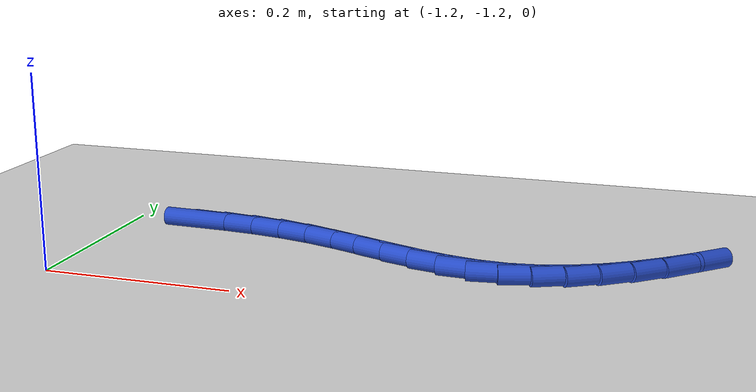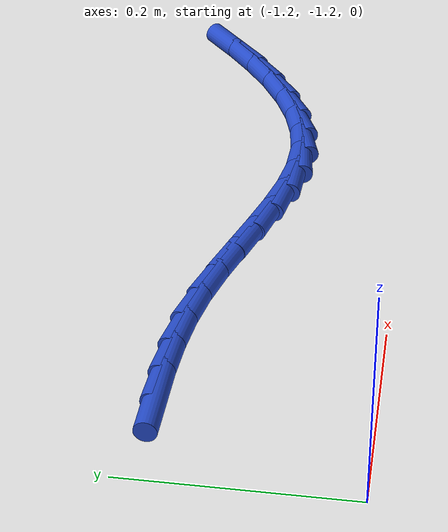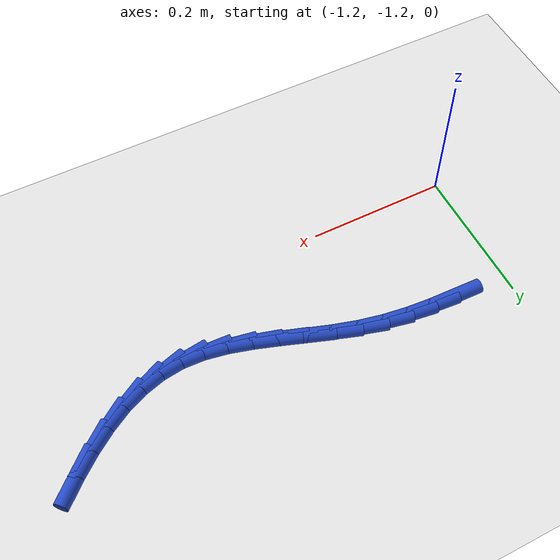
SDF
<sdf version="1.6">
 <world name="default">
  <model name="ground_plane">
   <static>1</static>
   <link name="link">
    <collision name="collision">
     <geometry><plane><normal>0 0 1</normal><size>100 100</size></plane></geometry>
     <surface><friction><ode><mu>100</mu><mu2>50</mu2></ode></friction></surface>
    </collision>
    <visual name="visual">
     <cast_shadows>0</cast_shadows>
     <geometry><plane><normal>0 0 1</normal><size>100 100</size></plane></geometry>
     <material>
      <script><uri>file://media/materials/scripts/gazebo.material</uri><name>Gazebo/WhiteGlow</name></script>
     </material>
    </visual>
   </link>
  </model>
  <model name="line">
   <link name="link_158">
    <pose>-1.1168358858821694 -1.0225293079654492 0.01 0 1.57 -0.03252685584083063</pose>
    <collision name="collision">
     <geometry><cylinder><radius>0.01</radius><length>0.08</length></cylinder></geometry>
    </collision>
    <visual name="visual">
     <material>
      <script><name>Gazebo/Blue</name><uri>file://media/materials/scripts/gazebo.material</uri></script>
     </material>
     <geometry><cylinder><radius>0.01</radius><length>0.08</length></cylinder></geometry>
    </visual>
   </link>
   <link name="link_159">
    <pose>-1.082501393166727 -1.023646495081462 0.01 0 1.57 -0.08110250158097652</pose>
    <collision name="collision">
     <geometry><cylinder><radius>0.01</radius><length>0.08</length></cylinder></geometry>
    </collision>
    <visual name="visual">
     <material>
      <script><name>Gazebo/Blue</name><uri>file://media/materials/scripts/gazebo.material</uri></script>
     </material>
     <geometry><cylinder><radius>0.01</radius><length>0.08</length></cylinder></geometry>
    </visual>
   </link>
   <link name="link_160">
    <pose>-1.0482236472999156 -1.0264326173808513 0.01 0 1.57 -0.1413218201803415</pose>
    <collision name="collision">
     <geometry><cylinder><radius>0.01</radius><length>0.08</length></cylinder></geometry>
    </collision>
    <visual name="visual">
     <material>
      <script><name>Gazebo/Blue</name><uri>file://media/materials/scripts/gazebo.material</uri></script>
     </material>
     <geometry><cylinder><radius>0.01</radius><length>0.08</length></cylinder></geometry>
    </visual>
   </link>
   <link name="link_161">
    <pose>-1.0140459122424705 -1.0312950911682108 0.01 0 1.57 -0.21258534671381565</pose>
    <collision name="collision">
     <geometry><cylinder><radius>0.01</radius><length>0.08</length></cylinder></geometry>
    </collision>
    <visual name="visual">
     <material>
      <script><name>Gazebo/Blue</name><uri>file://media/materials/scripts/gazebo.material</uri></script>
     </material>
     <geometry><cylinder><radius>0.01</radius><length>0.08</length></cylinder></geometry>
    </visual>
   </link>
   <link name="link_162">
    <pose>-0.980011452297536 -1.0386413183556775 0.01 0 1.57 -0.2855703836322391</pose>
    <collision name="collision">
     <geometry><cylinder><radius>0.01</radius><length>0.08</length></cylinder></geometry>
    </collision>
    <visual name="visual">
     <material>
      <script><name>Gazebo/Blue</name><uri>file://media/materials/scripts/gazebo.material</uri></script>
     </material>
     <geometry><cylinder><radius>0.01</radius><length>0.08</length></cylinder></geometry>
    </visual>
   </link>
   <link name="link_163">
    <pose>-0.946170714457797 -1.048576791434972 0.01 0 1.57 -0.33139638275210326</pose>
    <collision name="collision">
     <geometry><cylinder><radius>0.01</radius><length>0.08</length></cylinder></geometry>
    </collision>
    <visual name="visual">
     <material>
      <script><name>Gazebo/Blue</name><uri>file://media/materials/scripts/gazebo.material</uri></script>
     </material>
     <geometry><cylinder><radius>0.01</radius><length>0.08</length></cylinder></geometry>
    </visual>
   </link>
   <link name="link_164">
    <pose>-0.9125998146595363 -1.0601280622252482 0.01 0 1.57 -0.3453897704707042</pose>
    <collision name="collision">
     <geometry><cylinder><radius>0.01</radius><length>0.08</length></cylinder></geometry>
    </collision>
    <visual name="visual">
     <material>
      <script><name>Gazebo/Blue</name><uri>file://media/materials/scripts/gazebo.material</uri></script>
     </material>
     <geometry><cylinder><radius>0.01</radius><length>0.08</length></cylinder></geometry>
    </visual>
   </link>
   <link name="link_165">
    <pose>-0.8793806006518841 -1.0720807577103884 0.01 0 1.57 -0.32753660494499454</pose>
    <collision name="collision">
     <geometry><cylinder><radius>0.01</radius><length>0.08</length></cylinder></geometry>
    </collision>
    <visual name="visual">
     <material>
      <script><name>Gazebo/Blue</name><uri>file://media/materials/scripts/gazebo.material</uri></script>
     </material>
     <geometry><cylinder><radius>0.01</radius><length>0.08</length></cylinder></geometry>
    </visual>
   </link>
   <link name="link_166">
    <pose>-0.8465949201839692 -1.0832205048742765 0.01 0 1.57 -0.2752125518171618</pose>
    <collision name="collision">
     <geometry><cylinder><radius>0.01</radius><length>0.08</length></cylinder></geometry>
    </collision>
    <visual name="visual">
     <material>
      <script><name>Gazebo/Blue</name><uri>file://media/materials/scripts/gazebo.material</uri></script>
     </material>
     <geometry><cylinder><radius>0.01</radius><length>0.08</length></cylinder></geometry>
    </visual>
   </link>
   <link name="link_167">
    <pose>-0.814324621004921 -1.092332930700796 0.01 0 1.57 -0.18327406738220292</pose>
    <collision name="collision">
     <geometry><cylinder><radius>0.01</radius><length>0.08</length></cylinder></geometry>
    </collision>
    <visual name="visual">
     <material>
      <script><name>Gazebo/Blue</name><uri>file://media/materials/scripts/gazebo.material</uri></script>
     </material>
     <geometry><cylinder><radius>0.01</radius><length>0.08</length></cylinder></geometry>
    </visual>
   </link>
   <link name="link_168">
    <pose>-0.7826515508638688 -1.09820366217383 0.01 0 1.57 -0.04563246567881894</pose>
    <collision name="collision">
     <geometry><cylinder><radius>0.01</radius><length>0.08</length></cylinder></geometry>
    </collision>
    <visual name="visual">
     <material>
      <script><name>Gazebo/Blue</name><uri>file://media/materials/scripts/gazebo.material</uri></script>
     </material>
     <geometry><cylinder><radius>0.01</radius><length>0.08</length></cylinder></geometry>
    </visual>
   </link>
   <link name="link_169">
    <pose>-0.7516575120512113 -1.099618979104424 0.01 0 1.57 0.12591394991268448</pose>
    <collision name="collision">
     <geometry><cylinder><radius>0.01</radius><length>0.08</length></cylinder></geometry>
    </collision>
    <visual name="visual">
     <material>
      <script><name>Gazebo/Blue</name><uri>file://media/materials/scripts/gazebo.material</uri></script>
     </material>
     <geometry><cylinder><radius>0.01</radius><length>0.08</length></cylinder></geometry>
    </visual>
   </link>
   <link name="link_170">
    <pose>-0.7213948476451125 -1.0957882213742343 0.01 0 1.57 0.2867610357900745</pose>
    <collision name="collision">
     <geometry><cylinder><radius>0.01</radius><length>0.08</length></cylinder></geometry>
    </collision>
    <visual name="visual">
     <material>
      <script><name>Gazebo/Blue</name><uri>file://media/materials/scripts/gazebo.material</uri></script>
     </material>
     <geometry><cylinder><radius>0.01</radius><length>0.08</length></cylinder></geometry>
    </visual>
   </link>
   <link name="link_171">
    <pose>-0.6918357628580935 -1.0870715787528835 0.01 0 1.57 0.42414621084459275</pose>
    <collision name="collision">
     <geometry><cylinder><radius>0.01</radius><length>0.08</length></cylinder></geometry>
    </collision>
    <visual name="visual">
     <material>
      <script><name>Gazebo/Blue</name><uri>file://media/materials/scripts/gazebo.material</uri></script>
     </material>
     <geometry><cylinder><radius>0.01</radius><length>0.08</length></cylinder></geometry>
    </visual>
   </link>
   <link name="link_172">
    <pose>-0.662938964592781 -1.07402308855389 0.01 0 1.57 0.536792289389277</pose>
    <collision name="collision">
     <geometry><cylinder><radius>0.01</radius><length>0.08</length></cylinder></geometry>
    </collision>
    <visual name="visual">
     <material>
      <script><name>Gazebo/Blue</name><uri>file://media/materials/scripts/gazebo.material</uri></script>
     </material>
     <geometry><cylinder><radius>0.01</radius><length>0.08</length></cylinder></geometry>
    </visual>
   </link>
   <link name="link_173">
    <pose>-0.6346631597518012 -1.0571967880907707 0.01 0 1.57 0.626607252981205</pose>
    <collision name="collision">
     <geometry><cylinder><radius>0.01</radius><length>0.08</length></cylinder></geometry>
    </collision>
    <visual name="visual">
     <material>
      <script><name>Gazebo/Blue</name><uri>file://media/materials/scripts/gazebo.material</uri></script>
     </material>
     <geometry><cylinder><radius>0.01</radius><length>0.08</length></cylinder></geometry>
    </visual>
   </link>
   <link name="link_174">
    <pose>-0.606967055237781 -1.0371467146770421 0.01 0 1.57 0.6966561079904284</pose>
    <collision name="collision">
     <geometry><cylinder><radius>0.01</radius><length>0.08</length></cylinder></geometry>
    </collision>
    <visual name="visual">
     <material>
      <script><name>Gazebo/Blue</name><uri>file://media/materials/scripts/gazebo.material</uri></script>
     </material>
     <geometry><cylinder><radius>0.01</radius><length>0.08</length></cylinder></geometry>
    </visual>
   </link>
   <link name="link_175">
    <pose>-0.5798093579533473 -1.0144269056262225 0.01 0 1.57 0.7499719359974731</pose>
    <collision name="collision">
     <geometry><cylinder><radius>0.01</radius><length>0.08</length></cylinder></geometry>
    </collision>
    <visual name="visual">
     <material>
      <script><name>Gazebo/Blue</name><uri>file://media/materials/scripts/gazebo.material</uri></script>
     </material>
     <geometry><cylinder><radius>0.01</radius><length>0.08</length></cylinder></geometry>
    </visual>
   </link>
  </model>
 </world>
</sdf>
